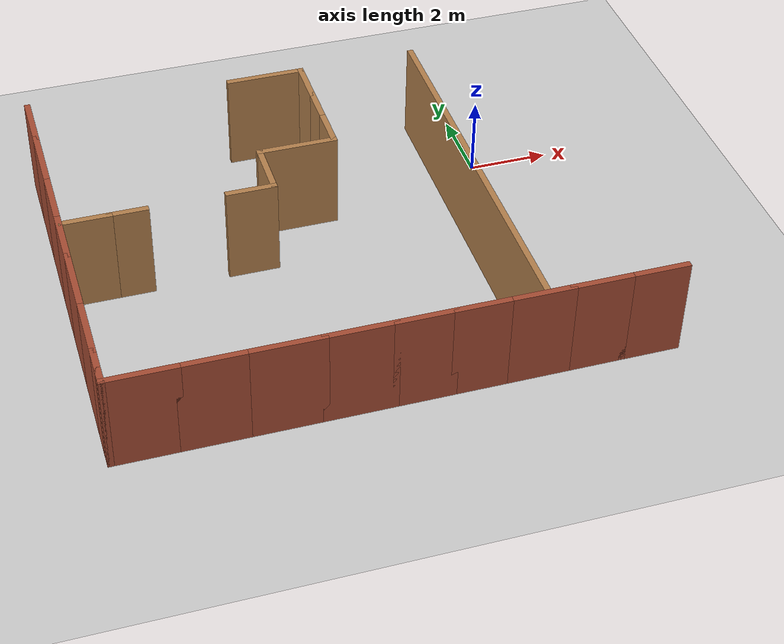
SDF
<sdf version="1.7">
 <world name="default">
  <model name="ground_plane">
   <static>1</static>
   <link name="link">
    <collision name="collision">
     <geometry><plane><normal>0 0 1</normal><size>100 100</size></plane></geometry>
     <surface>
      <contact><collide_bitmask>65535</collide_bitmask></contact>
      <friction><ode><mu>100</mu><mu2>50</mu2></ode></friction>
     </surface>
    </collision>
    <visual name="visual">
     <cast_shadows>0</cast_shadows>
     <geometry><plane><normal>0 0 1</normal><size>100 100</size></plane></geometry>
     <material>
      <script><uri>file://media/materials/scripts/gazebo.material</uri><name>Gazebo/Grey</name></script>
     </material>
    </visual>
   </link>
  </model>
  <model name="Building">
   <link name="Wall_107">
    <pose>-5.24865 1.58296 0 0 -0 0</pose>
    <visual name="Wall_107_Visual">
     <pose>0 0 1.25 0 -0 0</pose>
     <geometry><box><size>2 0.15 2.5</size></box></geometry>
     <material>
      <script><uri>file://media/materials/scripts/gazebo.material</uri><name>Gazebo/Wood</name></script>
      <ambient>1 1 1 1</ambient>
      <shader type="pixel"/>
     </material>
     <meta><layer>0</layer></meta>
    </visual>
    <collision name="Wall_107_Collision">
     <pose>0 0 1.25 0 -0 0</pose>
     <geometry><box><size>2 0.15 2.5</size></box></geometry>
     <surface>
      <friction>
       <ode><mu>1</mu><mu2>1</mu2><fdir1>0 0 0</fdir1><slip1>0</slip1><slip2>0</slip2></ode>
       <torsional>
        <coefficient>1</coefficient>
        <patch_radius>0</patch_radius>
        <surface_radius>0</surface_radius>
        <use_patch_radius>1</use_patch_radius>
        <ode><slip>0</slip></ode>
       </torsional>
      </friction>
      <bounce><restitution_coefficient>0</restitution_coefficient><threshold>1e+06</threshold></bounce>
      <contact>
       <collide_without_contact>0</collide_without_contact>
       <collide_without_contact_bitmask>1</collide_without_contact_bitmask>
       <collide_bitmask>1</collide_bitmask>
       <ode>
        <soft_cfm>0</soft_cfm>
        <soft_erp>0.2</soft_erp>
        <kp>1e+13</kp>
        <kd>1</kd>
        <max_vel>0.01</max_vel>
        <min_depth>0</min_depth>
       </ode>
       <bullet>
        <split_impulse>1</split_impulse>
        <split_impulse_penetration_threshold>-0.01</split_impulse_penetration_threshold>
        <soft_cfm>0</soft_cfm>
        <soft_erp>0.2</soft_erp>
        <kp>1e+13</kp>
        <kd>1</kd>
       </bullet>
      </contact>
     </surface>
    </collision>
   </link>
   <link name="Wall_115">
    <pose>-4.32365 1.03296 0 0 0 -1.5708</pose>
    <visual name="Wall_115_Visual">
     <pose>0 0 1.25 0 -0 0</pose>
     <geometry><box><size>1.25 0.15 2.5</size></box></geometry>
     <material>
      <script><uri>file://media/materials/scripts/gazebo.material</uri><name>Gazebo/Wood</name></script>
      <ambient>1 1 1 1</ambient>
      <shader type="pixel"/>
     </material>
     <meta><layer>0</layer></meta>
    </visual>
    <collision name="Wall_115_Collision">
     <pose>0 0 1.25 0 -0 0</pose>
     <geometry><box><size>1.25 0.15 2.5</size></box></geometry>
     <surface>
      <friction>
       <ode><mu>1</mu><mu2>1</mu2><fdir1>0 0 0</fdir1><slip1>0</slip1><slip2>0</slip2></ode>
       <torsional>
        <coefficient>1</coefficient>
        <patch_radius>0</patch_radius>
        <surface_radius>0</surface_radius>
        <use_patch_radius>1</use_patch_radius>
        <ode><slip>0</slip></ode>
       </torsional>
      </friction>
      <bounce><restitution_coefficient>0</restitution_coefficient><threshold>1e+06</threshold></bounce>
      <contact>
       <collide_without_contact>0</collide_without_contact>
       <collide_without_contact_bitmask>1</collide_without_contact_bitmask>
       <collide_bitmask>1</collide_bitmask>
       <ode>
        <soft_cfm>0</soft_cfm>
        <soft_erp>0.2</soft_erp>
        <kp>1e+13</kp>
        <kd>1</kd>
        <max_vel>0.01</max_vel>
        <min_depth>0</min_depth>
       </ode>
       <bullet>
        <split_impulse>1</split_impulse>
        <split_impulse_penetration_threshold>-0.01</split_impulse_penetration_threshold>
        <soft_cfm>0</soft_cfm>
        <soft_erp>0.2</soft_erp>
        <kp>1e+13</kp>
        <kd>1</kd>
       </bullet>
      </contact>
     </surface>
    </collision>
   </link>
   <link name="Wall_116">
    <pose>-4.32365 0.057961 0 0 0 -1.5708</pose>
    <visual name="Wall_116_Visual">
     <pose>0 0 1.25 0 -0 0</pose>
     <geometry><box><size>1 0.15 2.5</size></box></geometry>
     <material>
      <script><uri>file://media/materials/scripts/gazebo.material</uri><name>Gazebo/Wood</name></script>
      <ambient>1 1 1 1</ambient>
      <shader type="pixel"/>
     </material>
     <meta><layer>0</layer></meta>
    </visual>
    <collision name="Wall_116_Collision">
     <pose>0 0 1.25 0 -0 0</pose>
     <geometry><box><size>1 0.15 2.5</size></box></geometry>
     <surface>
      <friction>
       <ode><mu>1</mu><mu2>1</mu2><fdir1>0 0 0</fdir1><slip1>0</slip1><slip2>0</slip2></ode>
       <torsional>
        <coefficient>1</coefficient>
        <patch_radius>0</patch_radius>
        <surface_radius>0</surface_radius>
        <use_patch_radius>1</use_patch_radius>
        <ode><slip>0</slip></ode>
       </torsional>
      </friction>
      <bounce><restitution_coefficient>0</restitution_coefficient><threshold>1e+06</threshold></bounce>
      <contact>
       <collide_without_contact>0</collide_without_contact>
       <collide_without_contact_bitmask>1</collide_without_contact_bitmask>
       <collide_bitmask>1</collide_bitmask>
       <ode>
        <soft_cfm>0</soft_cfm>
        <soft_erp>0.2</soft_erp>
        <kp>1e+13</kp>
        <kd>1</kd>
        <max_vel>0.01</max_vel>
        <min_depth>0</min_depth>
       </ode>
       <bullet>
        <split_impulse>1</split_impulse>
        <split_impulse_penetration_threshold>-0.01</split_impulse_penetration_threshold>
        <soft_cfm>0</soft_cfm>
        <soft_erp>0.2</soft_erp>
        <kp>1e+13</kp>
        <kd>1</kd>
       </bullet>
      </contact>
     </surface>
    </collision>
   </link>
   <link name="Wall_117">
    <pose>-4.32365 -0.917039 0 0 0 -1.5708</pose>
    <visual name="Wall_117_Visual">
     <pose>0 0 1.25 0 -0 0</pose>
     <geometry><box><size>1.25 0.15 2.5</size></box></geometry>
     <material>
      <script><uri>file://media/materials/scripts/gazebo.material</uri><name>Gazebo/Wood</name></script>
      <ambient>1 1 1 1</ambient>
      <shader type="pixel"/>
     </material>
     <meta><layer>0</layer></meta>
    </visual>
    <collision name="Wall_117_Collision">
     <pose>0 0 1.25 0 -0 0</pose>
     <geometry><box><size>1.25 0.15 2.5</size></box></geometry>
     <surface>
      <friction>
       <ode><mu>1</mu><mu2>1</mu2><fdir1>0 0 0</fdir1><slip1>0</slip1><slip2>0</slip2></ode>
       <torsional>
        <coefficient>1</coefficient>
        <patch_radius>0</patch_radius>
        <surface_radius>0</surface_radius>
        <use_patch_radius>1</use_patch_radius>
        <ode><slip>0</slip></ode>
       </torsional>
      </friction>
      <bounce><restitution_coefficient>0</restitution_coefficient><threshold>1e+06</threshold></bounce>
      <contact>
       <collide_without_contact>0</collide_without_contact>
       <collide_without_contact_bitmask>1</collide_without_contact_bitmask>
       <collide_bitmask>1</collide_bitmask>
       <ode>
        <soft_cfm>0</soft_cfm>
        <soft_erp>0.2</soft_erp>
        <kp>1e+13</kp>
        <kd>1</kd>
        <max_vel>0.01</max_vel>
        <min_depth>0</min_depth>
       </ode>
       <bullet>
        <split_impulse>1</split_impulse>
        <split_impulse_penetration_threshold>-0.01</split_impulse_penetration_threshold>
        <soft_cfm>0</soft_cfm>
        <soft_erp>0.2</soft_erp>
        <kp>1e+13</kp>
        <kd>1</kd>
       </bullet>
      </contact>
     </surface>
    </collision>
   </link>
   <link name="Wall_118">
    <pose>-5.24865 -1.46704 0 0 -0 3.14159</pose>
    <visual name="Wall_118_Visual">
     <pose>0 0 1.25 0 -0 0</pose>
     <geometry><box><size>2 0.15 2.5</size></box></geometry>
     <material>
      <script><uri>file://media/materials/scripts/gazebo.material</uri><name>Gazebo/Wood</name></script>
      <ambient>1 1 1 1</ambient>
      <shader type="pixel"/>
     </material>
     <meta><layer>0</layer></meta>
    </visual>
    <collision name="Wall_118_Collision">
     <pose>0 0 1.25 0 -0 0</pose>
     <geometry><box><size>2 0.15 2.5</size></box></geometry>
     <surface>
      <friction>
       <ode><mu>1</mu><mu2>1</mu2><fdir1>0 0 0</fdir1><slip1>0</slip1><slip2>0</slip2></ode>
       <torsional>
        <coefficient>1</coefficient>
        <patch_radius>0</patch_radius>
        <surface_radius>0</surface_radius>
        <use_patch_radius>1</use_patch_radius>
        <ode><slip>0</slip></ode>
       </torsional>
      </friction>
      <bounce><restitution_coefficient>0</restitution_coefficient><threshold>1e+06</threshold></bounce>
      <contact>
       <collide_without_contact>0</collide_without_contact>
       <collide_without_contact_bitmask>1</collide_without_contact_bitmask>
       <collide_bitmask>1</collide_bitmask>
       <ode>
        <soft_cfm>0</soft_cfm>
        <soft_erp>0.2</soft_erp>
        <kp>1e+13</kp>
        <kd>1</kd>
        <max_vel>0.01</max_vel>
        <min_depth>0</min_depth>
       </ode>
       <bullet>
        <split_impulse>1</split_impulse>
        <split_impulse_penetration_threshold>-0.01</split_impulse_penetration_threshold>
        <soft_cfm>0</soft_cfm>
        <soft_erp>0.2</soft_erp>
        <kp>1e+13</kp>
        <kd>1</kd>
       </bullet>
      </contact>
     </surface>
    </collision>
   </link>
   <link name="Wall_119">
    <pose>-6.17365 -2.14204 0 0 0 -1.5708</pose>
    <visual name="Wall_119_Visual">
     <pose>0 0 1.25 0 -0 0</pose>
     <geometry><box><size>1.5 0.15 2.5</size></box></geometry>
     <material>
      <script><uri>file://media/materials/scripts/gazebo.material</uri><name>Gazebo/Wood</name></script>
      <ambient>1 1 1 1</ambient>
      <shader type="pixel"/>
     </material>
     <meta><layer>0</layer></meta>
    </visual>
    <collision name="Wall_119_Collision">
     <pose>0 0 1.25 0 -0 0</pose>
     <geometry><box><size>1.5 0.15 2.5</size></box></geometry>
     <surface>
      <friction>
       <ode><mu>1</mu><mu2>1</mu2><fdir1>0 0 0</fdir1><slip1>0</slip1><slip2>0</slip2></ode>
       <torsional>
        <coefficient>1</coefficient>
        <patch_radius>0</patch_radius>
        <surface_radius>0</surface_radius>
        <use_patch_radius>1</use_patch_radius>
        <ode><slip>0</slip></ode>
       </torsional>
      </friction>
      <bounce><restitution_coefficient>0</restitution_coefficient><threshold>1e+06</threshold></bounce>
      <contact>
       <collide_without_contact>0</collide_without_contact>
       <collide_without_contact_bitmask>1</collide_without_contact_bitmask>
       <collide_bitmask>1</collide_bitmask>
       <ode>
        <soft_cfm>0</soft_cfm>
        <soft_erp>0.2</soft_erp>
        <kp>1e+13</kp>
        <kd>1</kd>
        <max_vel>0.01</max_vel>
        <min_depth>0</min_depth>
       </ode>
       <bullet>
        <split_impulse>1</split_impulse>
        <split_impulse_penetration_threshold>-0.01</split_impulse_penetration_threshold>
        <soft_cfm>0</soft_cfm>
        <soft_erp>0.2</soft_erp>
        <kp>1e+13</kp>
        <kd>1</kd>
       </bullet>
      </contact>
     </surface>
    </collision>
   </link>
   <link name="Wall_120">
    <pose>-6.72365 -2.81704 0 0 -0 3.14159</pose>
    <visual name="Wall_120_Visual">
     <pose>0 0 1.25 0 -0 0</pose>
     <geometry><box><size>1.25 0.15 2.5</size></box></geometry>
     <material>
      <script><uri>file://media/materials/scripts/gazebo.material</uri><name>Gazebo/Wood</name></script>
      <ambient>1 1 1 1</ambient>
      <shader type="pixel"/>
     </material>
     <meta><layer>0</layer></meta>
    </visual>
    <collision name="Wall_120_Collision">
     <pose>0 0 1.25 0 -0 0</pose>
     <geometry><box><size>1.25 0.15 2.5</size></box></geometry>
     <surface>
      <friction>
       <ode><mu>1</mu><mu2>1</mu2><fdir1>0 0 0</fdir1><slip1>0</slip1><slip2>0</slip2></ode>
       <torsional>
        <coefficient>1</coefficient>
        <patch_radius>0</patch_radius>
        <surface_radius>0</surface_radius>
        <use_patch_radius>1</use_patch_radius>
        <ode><slip>0</slip></ode>
       </torsional>
      </friction>
      <bounce><restitution_coefficient>0</restitution_coefficient><threshold>1e+06</threshold></bounce>
      <contact>
       <collide_without_contact>0</collide_without_contact>
       <collide_without_contact_bitmask>1</collide_without_contact_bitmask>
       <collide_bitmask>1</collide_bitmask>
       <ode>
        <soft_cfm>0</soft_cfm>
        <soft_erp>0.2</soft_erp>
        <kp>1e+13</kp>
        <kd>1</kd>
        <max_vel>0.01</max_vel>
        <min_depth>0</min_depth>
       </ode>
       <bullet>
        <split_impulse>1</split_impulse>
        <split_impulse_penetration_threshold>-0.01</split_impulse_penetration_threshold>
        <soft_cfm>0</soft_cfm>
        <soft_erp>0.2</soft_erp>
        <kp>1e+13</kp>
        <kd>1</kd>
       </bullet>
      </contact>
     </surface>
    </collision>
   </link>
   <link name="Wall_123">
    <pose>-9.64865 -2.81704 0 0 -0 3.14159</pose>
    <visual name="Wall_123_Visual">
     <pose>0 0 1.25 0 -0 0</pose>
     <geometry><box><size>1 0.15 2.5</size></box></geometry>
     <material>
      <script><uri>file://media/materials/scripts/gazebo.material</uri><name>Gazebo/Wood</name></script>
      <ambient>1 1 1 1</ambient>
      <shader type="pixel"/>
     </material>
     <meta><layer>0</layer></meta>
    </visual>
    <collision name="Wall_123_Collision">
     <pose>0 0 1.25 0 -0 0</pose>
     <geometry><box><size>1 0.15 2.5</size></box></geometry>
     <surface>
      <friction>
       <ode><mu>1</mu><mu2>1</mu2><fdir1>0 0 0</fdir1><slip1>0</slip1><slip2>0</slip2></ode>
       <torsional>
        <coefficient>1</coefficient>
        <patch_radius>0</patch_radius>
        <surface_radius>0</surface_radius>
        <use_patch_radius>1</use_patch_radius>
        <ode><slip>0</slip></ode>
       </torsional>
      </friction>
      <bounce><restitution_coefficient>0</restitution_coefficient><threshold>1e+06</threshold></bounce>
      <contact>
       <collide_without_contact>0</collide_without_contact>
       <collide_without_contact_bitmask>1</collide_without_contact_bitmask>
       <collide_bitmask>1</collide_bitmask>
       <ode>
        <soft_cfm>0</soft_cfm>
        <soft_erp>0.2</soft_erp>
        <kp>1e+13</kp>
        <kd>1</kd>
        <max_vel>0.01</max_vel>
        <min_depth>0</min_depth>
       </ode>
       <bullet>
        <split_impulse>1</split_impulse>
        <split_impulse_penetration_threshold>-0.01</split_impulse_penetration_threshold>
        <soft_cfm>0</soft_cfm>
        <soft_erp>0.2</soft_erp>
        <kp>1e+13</kp>
        <kd>1</kd>
       </bullet>
      </contact>
     </surface>
    </collision>
   </link>
   <link name="Wall_124">
    <pose>-10.6237 -2.81704 0 0 -0 3.14159</pose>
    <visual name="Wall_124_Visual">
     <pose>0 0 1.25 0 -0 0</pose>
     <geometry><box><size>1.25 0.15 2.5</size></box></geometry>
     <material>
      <script><uri>file://media/materials/scripts/gazebo.material</uri><name>Gazebo/Wood</name></script>
      <ambient>1 1 1 1</ambient>
      <shader type="pixel"/>
     </material>
     <meta><layer>0</layer></meta>
    </visual>
    <collision name="Wall_124_Collision">
     <pose>0 0 1.25 0 -0 0</pose>
     <geometry><box><size>1.25 0.15 2.5</size></box></geometry>
     <surface>
      <friction>
       <ode><mu>1</mu><mu2>1</mu2><fdir1>0 0 0</fdir1><slip1>0</slip1><slip2>0</slip2></ode>
       <torsional>
        <coefficient>1</coefficient>
        <patch_radius>0</patch_radius>
        <surface_radius>0</surface_radius>
        <use_patch_radius>1</use_patch_radius>
        <ode><slip>0</slip></ode>
       </torsional>
      </friction>
      <bounce><restitution_coefficient>0</restitution_coefficient><threshold>1e+06</threshold></bounce>
      <contact>
       <collide_without_contact>0</collide_without_contact>
       <collide_without_contact_bitmask>1</collide_without_contact_bitmask>
       <collide_bitmask>1</collide_bitmask>
       <ode>
        <soft_cfm>0</soft_cfm>
        <soft_erp>0.2</soft_erp>
        <kp>1e+13</kp>
        <kd>1</kd>
        <max_vel>0.01</max_vel>
        <min_depth>0</min_depth>
       </ode>
       <bullet>
        <split_impulse>1</split_impulse>
        <split_impulse_penetration_threshold>-0.01</split_impulse_penetration_threshold>
        <soft_cfm>0</soft_cfm>
        <soft_erp>0.2</soft_erp>
        <kp>1e+13</kp>
        <kd>1</kd>
       </bullet>
      </contact>
     </surface>
    </collision>
   </link>
   <link name="Wall_146">
    <pose>-1.37365 -3.21704 0 0 0 -1.5708</pose>
    <visual name="Wall_146_Visual">
     <pose>0 0 1.25 0 -0 0</pose>
     <geometry><box><size>9.75 0.15 2.5</size></box></geometry>
     <material>
      <script><uri>file://media/materials/scripts/gazebo.material</uri><name>Gazebo/Wood</name></script>
      <ambient>1 1 1 1</ambient>
      <shader type="pixel"/>
     </material>
     <meta><layer>0</layer></meta>
    </visual>
    <collision name="Wall_146_Collision">
     <pose>0 0 1.25 0 -0 0</pose>
     <geometry><box><size>9.75 0.15 2.5</size></box></geometry>
     <surface>
      <friction>
       <ode><mu>1</mu><mu2>1</mu2><fdir1>0 0 0</fdir1><slip1>0</slip1><slip2>0</slip2></ode>
       <torsional>
        <coefficient>1</coefficient>
        <patch_radius>0</patch_radius>
        <surface_radius>0</surface_radius>
        <use_patch_radius>1</use_patch_radius>
        <ode><slip>0</slip></ode>
       </torsional>
      </friction>
      <bounce><restitution_coefficient>0</restitution_coefficient><threshold>1e+06</threshold></bounce>
      <contact>
       <collide_without_contact>0</collide_without_contact>
       <collide_without_contact_bitmask>1</collide_without_contact_bitmask>
       <collide_bitmask>1</collide_bitmask>
       <ode>
        <soft_cfm>0</soft_cfm>
        <soft_erp>0.2</soft_erp>
        <kp>1e+13</kp>
        <kd>1</kd>
        <max_vel>0.01</max_vel>
        <min_depth>0</min_depth>
       </ode>
       <bullet>
        <split_impulse>1</split_impulse>
        <split_impulse_penetration_threshold>-0.01</split_impulse_penetration_threshold>
        <soft_cfm>0</soft_cfm>
        <soft_erp>0.2</soft_erp>
        <kp>1e+13</kp>
        <kd>1</kd>
       </bullet>
      </contact>
     </surface>
    </collision>
   </link>
   <link name="Wall_16">
    <pose>-11.236 1.26127 0 0 0 -1.5708</pose>
    <visual name="Wall_16_Visual">
     <pose>0 0 1.25 0 -0 0</pose>
     <geometry><box><size>1.5 0.15 2.5</size></box></geometry>
     <material>
      <script><uri>file://media/materials/scripts/gazebo.material</uri><name>Gazebo/Bricks</name></script>
      <ambient>1 1 1 1</ambient>
      <shader type="pixel"/>
     </material>
     <meta><layer>0</layer></meta>
    </visual>
    <collision name="Wall_16_Collision">
     <pose>0 0 1.25 0 -0 0</pose>
     <geometry><box><size>1.5 0.15 2.5</size></box></geometry>
     <surface>
      <friction>
       <ode><mu>1</mu><mu2>1</mu2><fdir1>0 0 0</fdir1><slip1>0</slip1><slip2>0</slip2></ode>
       <torsional>
        <coefficient>1</coefficient>
        <patch_radius>0</patch_radius>
        <surface_radius>0</surface_radius>
        <use_patch_radius>1</use_patch_radius>
        <ode><slip>0</slip></ode>
       </torsional>
      </friction>
      <bounce><restitution_coefficient>0</restitution_coefficient><threshold>1e+06</threshold></bounce>
      <contact>
       <collide_without_contact>0</collide_without_contact>
       <collide_without_contact_bitmask>1</collide_without_contact_bitmask>
       <collide_bitmask>1</collide_bitmask>
       <ode>
        <soft_cfm>0</soft_cfm>
        <soft_erp>0.2</soft_erp>
        <kp>1e+13</kp>
        <kd>1</kd>
        <max_vel>0.01</max_vel>
        <min_depth>0</min_depth>
       </ode>
       <bullet>
        <split_impulse>1</split_impulse>
        <split_impulse_penetration_threshold>-0.01</split_impulse_penetration_threshold>
        <soft_cfm>0</soft_cfm>
        <soft_erp>0.2</soft_erp>
        <kp>1e+13</kp>
        <kd>1</kd>
       </bullet>
      </contact>
     </surface>
    </collision>
   </link>
   <link name="Wall_17">
    <pose>-11.236 -0.213726 0 0 0 -1.5708</pose>
    <visual name="Wall_17_Visual">
     <pose>0 0 1.25 0 -0 0</pose>
     <geometry><box><size>1.75 0.15 2.5</size></box></geometry>
     <material>
      <script><uri>file://media/materials/scripts/gazebo.material</uri><name>Gazebo/Bricks</name></script>
      <ambient>1 1 1 1</ambient>
      <shader type="pixel"/>
     </material>
     <meta><layer>0</layer></meta>
    </visual>
    <collision name="Wall_17_Collision">
     <pose>0 0 1.25 0 -0 0</pose>
     <geometry><box><size>1.75 0.15 2.5</size></box></geometry>
     <surface>
      <friction>
       <ode><mu>1</mu><mu2>1</mu2><fdir1>0 0 0</fdir1><slip1>0</slip1><slip2>0</slip2></ode>
       <torsional>
        <coefficient>1</coefficient>
        <patch_radius>0</patch_radius>
        <surface_radius>0</surface_radius>
        <use_patch_radius>1</use_patch_radius>
        <ode><slip>0</slip></ode>
       </torsional>
      </friction>
      <bounce><restitution_coefficient>0</restitution_coefficient><threshold>1e+06</threshold></bounce>
      <contact>
       <collide_without_contact>0</collide_without_contact>
       <collide_without_contact_bitmask>1</collide_without_contact_bitmask>
       <collide_bitmask>1</collide_bitmask>
       <ode>
        <soft_cfm>0</soft_cfm>
        <soft_erp>0.2</soft_erp>
        <kp>1e+13</kp>
        <kd>1</kd>
        <max_vel>0.01</max_vel>
        <min_depth>0</min_depth>
       </ode>
       <bullet>
        <split_impulse>1</split_impulse>
        <split_impulse_penetration_threshold>-0.01</split_impulse_penetration_threshold>
        <soft_cfm>0</soft_cfm>
        <soft_erp>0.2</soft_erp>
        <kp>1e+13</kp>
        <kd>1</kd>
       </bullet>
      </contact>
     </surface>
    </collision>
   </link>
   <link name="Wall_18">
    <pose>-11.236 -1.81373 0 0 0 -1.5708</pose>
    <visual name="Wall_18_Visual">
     <pose>0 0 1.25 0 -0 0</pose>
     <geometry><box><size>1.75 0.15 2.5</size></box></geometry>
     <material>
      <script><uri>file://media/materials/scripts/gazebo.material</uri><name>Gazebo/Bricks</name></script>
      <ambient>1 1 1 1</ambient>
      <shader type="pixel"/>
     </material>
     <meta><layer>0</layer></meta>
    </visual>
    <collision name="Wall_18_Collision">
     <pose>0 0 1.25 0 -0 0</pose>
     <geometry><box><size>1.75 0.15 2.5</size></box></geometry>
     <surface>
      <friction>
       <ode><mu>1</mu><mu2>1</mu2><fdir1>0 0 0</fdir1><slip1>0</slip1><slip2>0</slip2></ode>
       <torsional>
        <coefficient>1</coefficient>
        <patch_radius>0</patch_radius>
        <surface_radius>0</surface_radius>
        <use_patch_radius>1</use_patch_radius>
        <ode><slip>0</slip></ode>
       </torsional>
      </friction>
      <bounce><restitution_coefficient>0</restitution_coefficient><threshold>1e+06</threshold></bounce>
      <contact>
       <collide_without_contact>0</collide_without_contact>
       <collide_without_contact_bitmask>1</collide_without_contact_bitmask>
       <collide_bitmask>1</collide_bitmask>
       <ode>
        <soft_cfm>0</soft_cfm>
        <soft_erp>0.2</soft_erp>
        <kp>1e+13</kp>
        <kd>1</kd>
        <max_vel>0.01</max_vel>
        <min_depth>0</min_depth>
       </ode>
       <bullet>
        <split_impulse>1</split_impulse>
        <split_impulse_penetration_threshold>-0.01</split_impulse_penetration_threshold>
        <soft_cfm>0</soft_cfm>
        <soft_erp>0.2</soft_erp>
        <kp>1e+13</kp>
        <kd>1</kd>
       </bullet>
      </contact>
     </surface>
    </collision>
   </link>
   <link name="Wall_19">
    <pose>-11.236 -3.28873 0 0 0 -1.5708</pose>
    <visual name="Wall_19_Visual">
     <pose>0 0 1.25 0 -0 0</pose>
     <geometry><box><size>1.5 0.15 2.5</size></box></geometry>
     <material>
      <script><uri>file://media/materials/scripts/gazebo.material</uri><name>Gazebo/Bricks</name></script>
      <ambient>1 1 1 1</ambient>
      <shader type="pixel"/>
     </material>
     <meta><layer>0</layer></meta>
    </visual>
    <collision name="Wall_19_Collision">
     <pose>0 0 1.25 0 -0 0</pose>
     <geometry><box><size>1.5 0.15 2.5</size></box></geometry>
     <surface>
      <friction>
       <ode><mu>1</mu><mu2>1</mu2><fdir1>0 0 0</fdir1><slip1>0</slip1><slip2>0</slip2></ode>
       <torsional>
        <coefficient>1</coefficient>
        <patch_radius>0</patch_radius>
        <surface_radius>0</surface_radius>
        <use_patch_radius>1</use_patch_radius>
        <ode><slip>0</slip></ode>
       </torsional>
      </friction>
      <bounce><restitution_coefficient>0</restitution_coefficient><threshold>1e+06</threshold></bounce>
      <contact>
       <collide_without_contact>0</collide_without_contact>
       <collide_without_contact_bitmask>1</collide_without_contact_bitmask>
       <collide_bitmask>1</collide_bitmask>
       <ode>
        <soft_cfm>0</soft_cfm>
        <soft_erp>0.2</soft_erp>
        <kp>1e+13</kp>
        <kd>1</kd>
        <max_vel>0.01</max_vel>
        <min_depth>0</min_depth>
       </ode>
       <bullet>
        <split_impulse>1</split_impulse>
        <split_impulse_penetration_threshold>-0.01</split_impulse_penetration_threshold>
        <soft_cfm>0</soft_cfm>
        <soft_erp>0.2</soft_erp>
        <kp>1e+13</kp>
        <kd>1</kd>
       </bullet>
      </contact>
     </surface>
    </collision>
   </link>
   <link name="Wall_20">
    <pose>-11.236 -4.76373 0 0 0 -1.5708</pose>
    <visual name="Wall_20_Visual">
     <pose>0 0 1.25 0 -0 0</pose>
     <geometry><box><size>1.75 0.15 2.5</size></box></geometry>
     <material>
      <script><uri>file://media/materials/scripts/gazebo.material</uri><name>Gazebo/Bricks</name></script>
      <ambient>1 1 1 1</ambient>
      <shader type="pixel"/>
     </material>
     <meta><layer>0</layer></meta>
    </visual>
    <collision name="Wall_20_Collision">
     <pose>0 0 1.25 0 -0 0</pose>
     <geometry><box><size>1.75 0.15 2.5</size></box></geometry>
     <surface>
      <friction>
       <ode><mu>1</mu><mu2>1</mu2><fdir1>0 0 0</fdir1><slip1>0</slip1><slip2>0</slip2></ode>
       <torsional>
        <coefficient>1</coefficient>
        <patch_radius>0</patch_radius>
        <surface_radius>0</surface_radius>
        <use_patch_radius>1</use_patch_radius>
        <ode><slip>0</slip></ode>
       </torsional>
      </friction>
      <bounce><restitution_coefficient>0</restitution_coefficient><threshold>1e+06</threshold></bounce>
      <contact>
       <collide_without_contact>0</collide_without_contact>
       <collide_without_contact_bitmask>1</collide_without_contact_bitmask>
       <collide_bitmask>1</collide_bitmask>
       <ode>
        <soft_cfm>0</soft_cfm>
        <soft_erp>0.2</soft_erp>
        <kp>1e+13</kp>
        <kd>1</kd>
        <max_vel>0.01</max_vel>
        <min_depth>0</min_depth>
       </ode>
       <bullet>
        <split_impulse>1</split_impulse>
        <split_impulse_penetration_threshold>-0.01</split_impulse_penetration_threshold>
        <soft_cfm>0</soft_cfm>
        <soft_erp>0.2</soft_erp>
        <kp>1e+13</kp>
        <kd>1</kd>
       </bullet>
      </contact>
     </surface>
    </collision>
   </link>
   <link name="Wall_21">
    <pose>-11.236 -6.36373 0 0 0 -1.5708</pose>
    <visual name="Wall_21_Visual">
     <pose>0 0 1.25 0 -0 0</pose>
     <geometry><box><size>1.75 0.15 2.5</size></box></geometry>
     <material>
      <script><uri>file://media/materials/scripts/gazebo.material</uri><name>Gazebo/Bricks</name></script>
      <ambient>1 1 1 1</ambient>
      <shader type="pixel"/>
     </material>
     <meta><layer>0</layer></meta>
    </visual>
    <collision name="Wall_21_Collision">
     <pose>0 0 1.25 0 -0 0</pose>
     <geometry><box><size>1.75 0.15 2.5</size></box></geometry>
     <surface>
      <friction>
       <ode><mu>1</mu><mu2>1</mu2><fdir1>0 0 0</fdir1><slip1>0</slip1><slip2>0</slip2></ode>
       <torsional>
        <coefficient>1</coefficient>
        <patch_radius>0</patch_radius>
        <surface_radius>0</surface_radius>
        <use_patch_radius>1</use_patch_radius>
        <ode><slip>0</slip></ode>
       </torsional>
      </friction>
      <bounce><restitution_coefficient>0</restitution_coefficient><threshold>1e+06</threshold></bounce>
      <contact>
       <collide_without_contact>0</collide_without_contact>
       <collide_without_contact_bitmask>1</collide_without_contact_bitmask>
       <collide_bitmask>1</collide_bitmask>
       <ode>
        <soft_cfm>0</soft_cfm>
        <soft_erp>0.2</soft_erp>
        <kp>1e+13</kp>
        <kd>1</kd>
        <max_vel>0.01</max_vel>
        <min_depth>0</min_depth>
       </ode>
       <bullet>
        <split_impulse>1</split_impulse>
        <split_impulse_penetration_threshold>-0.01</split_impulse_penetration_threshold>
        <soft_cfm>0</soft_cfm>
        <soft_erp>0.2</soft_erp>
        <kp>1e+13</kp>
        <kd>1</kd>
       </bullet>
      </contact>
     </surface>
    </collision>
   </link>
   <link name="Wall_22">
    <pose>-11.236 -7.46373 0 0 0 -1.5708</pose>
    <visual name="Wall_22_Visual">
     <pose>0 0 1.25 0 -0 0</pose>
     <geometry><box><size>0.75 0.15 2.5</size></box></geometry>
     <material>
      <script><uri>file://media/materials/scripts/gazebo.material</uri><name>Gazebo/Bricks</name></script>
      <ambient>1 1 1 1</ambient>
      <shader type="pixel"/>
     </material>
     <meta><layer>0</layer></meta>
    </visual>
    <collision name="Wall_22_Collision">
     <pose>0 0 1.25 0 -0 0</pose>
     <geometry><box><size>0.75 0.15 2.5</size></box></geometry>
     <surface>
      <friction>
       <ode><mu>1</mu><mu2>1</mu2><fdir1>0 0 0</fdir1><slip1>0</slip1><slip2>0</slip2></ode>
       <torsional>
        <coefficient>1</coefficient>
        <patch_radius>0</patch_radius>
        <surface_radius>0</surface_radius>
        <use_patch_radius>1</use_patch_radius>
        <ode><slip>0</slip></ode>
       </torsional>
      </friction>
      <bounce><restitution_coefficient>0</restitution_coefficient><threshold>1e+06</threshold></bounce>
      <contact>
       <collide_without_contact>0</collide_without_contact>
       <collide_without_contact_bitmask>1</collide_without_contact_bitmask>
       <collide_bitmask>1</collide_bitmask>
       <ode>
        <soft_cfm>0</soft_cfm>
        <soft_erp>0.2</soft_erp>
        <kp>1e+13</kp>
        <kd>1</kd>
        <max_vel>0.01</max_vel>
        <min_depth>0</min_depth>
       </ode>
       <bullet>
        <split_impulse>1</split_impulse>
        <split_impulse_penetration_threshold>-0.01</split_impulse_penetration_threshold>
        <soft_cfm>0</soft_cfm>
        <soft_erp>0.2</soft_erp>
        <kp>1e+13</kp>
        <kd>1</kd>
       </bullet>
      </contact>
     </surface>
    </collision>
   </link>
   <link name="Wall_23">
    <pose>-11.236 -7.93873 0 0 0 -1.5708</pose>
    <visual name="Wall_23_Visual">
     <pose>0 0 1.25 0 -0 0</pose>
     <geometry><box><size>0.5 0.15 2.5</size></box></geometry>
     <material>
      <script><uri>file://media/materials/scripts/gazebo.material</uri><name>Gazebo/Bricks</name></script>
      <ambient>1 1 1 1</ambient>
      <shader type="pixel"/>
     </material>
     <meta><layer>0</layer></meta>
    </visual>
    <collision name="Wall_23_Collision">
     <pose>0 0 1.25 0 -0 0</pose>
     <geometry><box><size>0.5 0.15 2.5</size></box></geometry>
     <surface>
      <friction>
       <ode><mu>1</mu><mu2>1</mu2><fdir1>0 0 0</fdir1><slip1>0</slip1><slip2>0</slip2></ode>
       <torsional>
        <coefficient>1</coefficient>
        <patch_radius>0</patch_radius>
        <surface_radius>0</surface_radius>
        <use_patch_radius>1</use_patch_radius>
        <ode><slip>0</slip></ode>
       </torsional>
      </friction>
      <bounce><restitution_coefficient>0</restitution_coefficient><threshold>1e+06</threshold></bounce>
      <contact>
       <collide_without_contact>0</collide_without_contact>
       <collide_without_contact_bitmask>1</collide_without_contact_bitmask>
       <collide_bitmask>1</collide_bitmask>
       <ode>
        <soft_cfm>0</soft_cfm>
        <soft_erp>0.2</soft_erp>
        <kp>1e+13</kp>
        <kd>1</kd>
        <max_vel>0.01</max_vel>
        <min_depth>0</min_depth>
       </ode>
       <bullet>
        <split_impulse>1</split_impulse>
        <split_impulse_penetration_threshold>-0.01</split_impulse_penetration_threshold>
        <soft_cfm>0</soft_cfm>
        <soft_erp>0.2</soft_erp>
        <kp>1e+13</kp>
        <kd>1</kd>
       </bullet>
      </contact>
     </surface>
    </collision>
   </link>
   <link name="Wall_24">
    <pose>-10.436 -8.11373 0 0 -0 0</pose>
    <visual name="Wall_24_Visual">
     <pose>0 0 1.25 0 -0 0</pose>
     <geometry><box><size>1.75 0.15 2.5</size></box></geometry>
     <material>
      <script><uri>file://media/materials/scripts/gazebo.material</uri><name>Gazebo/Bricks</name></script>
      <ambient>1 1 1 1</ambient>
      <shader type="pixel"/>
     </material>
     <meta><layer>0</layer></meta>
    </visual>
    <collision name="Wall_24_Collision">
     <pose>0 0 1.25 0 -0 0</pose>
     <geometry><box><size>1.75 0.15 2.5</size></box></geometry>
     <surface>
      <friction>
       <ode><mu>1</mu><mu2>1</mu2><fdir1>0 0 0</fdir1><slip1>0</slip1><slip2>0</slip2></ode>
       <torsional>
        <coefficient>1</coefficient>
        <patch_radius>0</patch_radius>
        <surface_radius>0</surface_radius>
        <use_patch_radius>1</use_patch_radius>
        <ode><slip>0</slip></ode>
       </torsional>
      </friction>
      <bounce><restitution_coefficient>0</restitution_coefficient><threshold>1e+06</threshold></bounce>
      <contact>
       <collide_without_contact>0</collide_without_contact>
       <collide_without_contact_bitmask>1</collide_without_contact_bitmask>
       <collide_bitmask>1</collide_bitmask>
       <ode>
        <soft_cfm>0</soft_cfm>
        <soft_erp>0.2</soft_erp>
        <kp>1e+13</kp>
        <kd>1</kd>
        <max_vel>0.01</max_vel>
        <min_depth>0</min_depth>
       </ode>
       <bullet>
        <split_impulse>1</split_impulse>
        <split_impulse_penetration_threshold>-0.01</split_impulse_penetration_threshold>
        <soft_cfm>0</soft_cfm>
        <soft_erp>0.2</soft_erp>
        <kp>1e+13</kp>
        <kd>1</kd>
       </bullet>
      </contact>
     </surface>
    </collision>
   </link>
   <link name="Wall_25">
    <pose>-8.83596 -8.11373 0 0 -0 0</pose>
    <visual name="Wall_25_Visual">
     <pose>0 0 1.25 0 -0 0</pose>
     <geometry><box><size>1.75 0.15 2.5</size></box></geometry>
     <material>
      <script><uri>file://media/materials/scripts/gazebo.material</uri><name>Gazebo/Bricks</name></script>
      <ambient>1 1 1 1</ambient>
      <shader type="pixel"/>
     </material>
     <meta><layer>0</layer></meta>
    </visual>
    <collision name="Wall_25_Collision">
     <pose>0 0 1.25 0 -0 0</pose>
     <geometry><box><size>1.75 0.15 2.5</size></box></geometry>
     <surface>
      <friction>
       <ode><mu>1</mu><mu2>1</mu2><fdir1>0 0 0</fdir1><slip1>0</slip1><slip2>0</slip2></ode>
       <torsional>
        <coefficient>1</coefficient>
        <patch_radius>0</patch_radius>
        <surface_radius>0</surface_radius>
        <use_patch_radius>1</use_patch_radius>
        <ode><slip>0</slip></ode>
       </torsional>
      </friction>
      <bounce><restitution_coefficient>0</restitution_coefficient><threshold>1e+06</threshold></bounce>
      <contact>
       <collide_without_contact>0</collide_without_contact>
       <collide_without_contact_bitmask>1</collide_without_contact_bitmask>
       <collide_bitmask>1</collide_bitmask>
       <ode>
        <soft_cfm>0</soft_cfm>
        <soft_erp>0.2</soft_erp>
        <kp>1e+13</kp>
        <kd>1</kd>
        <max_vel>0.01</max_vel>
        <min_depth>0</min_depth>
       </ode>
       <bullet>
        <split_impulse>1</split_impulse>
        <split_impulse_penetration_threshold>-0.01</split_impulse_penetration_threshold>
        <soft_cfm>0</soft_cfm>
        <soft_erp>0.2</soft_erp>
        <kp>1e+13</kp>
        <kd>1</kd>
       </bullet>
      </contact>
     </surface>
    </collision>
   </link>
   <link name="Wall_26">
    <pose>-7.23596 -8.11373 0 0 -0 0</pose>
    <visual name="Wall_26_Visual">
     <pose>0 0 1.25 0 -0 0</pose>
     <geometry><box><size>1.75 0.15 2.5</size></box></geometry>
     <material>
      <script><uri>file://media/materials/scripts/gazebo.material</uri><name>Gazebo/Bricks</name></script>
      <ambient>1 1 1 1</ambient>
      <shader type="pixel"/>
     </material>
     <meta><layer>0</layer></meta>
    </visual>
    <collision name="Wall_26_Collision">
     <pose>0 0 1.25 0 -0 0</pose>
     <geometry><box><size>1.75 0.15 2.5</size></box></geometry>
     <surface>
      <friction>
       <ode><mu>1</mu><mu2>1</mu2><fdir1>0 0 0</fdir1><slip1>0</slip1><slip2>0</slip2></ode>
       <torsional>
        <coefficient>1</coefficient>
        <patch_radius>0</patch_radius>
        <surface_radius>0</surface_radius>
        <use_patch_radius>1</use_patch_radius>
        <ode><slip>0</slip></ode>
       </torsional>
      </friction>
      <bounce><restitution_coefficient>0</restitution_coefficient><threshold>1e+06</threshold></bounce>
      <contact>
       <collide_without_contact>0</collide_without_contact>
       <collide_without_contact_bitmask>1</collide_without_contact_bitmask>
       <collide_bitmask>1</collide_bitmask>
       <ode>
        <soft_cfm>0</soft_cfm>
        <soft_erp>0.2</soft_erp>
        <kp>1e+13</kp>
        <kd>1</kd>
        <max_vel>0.01</max_vel>
        <min_depth>0</min_depth>
       </ode>
       <bullet>
        <split_impulse>1</split_impulse>
        <split_impulse_penetration_threshold>-0.01</split_impulse_penetration_threshold>
        <soft_cfm>0</soft_cfm>
        <soft_erp>0.2</soft_erp>
        <kp>1e+13</kp>
        <kd>1</kd>
       </bullet>
      </contact>
     </surface>
    </collision>
   </link>
   <link name="Wall_27">
    <pose>-5.63596 -8.11373 0 0 -0 0</pose>
    <visual name="Wall_27_Visual">
     <pose>0 0 1.25 0 -0 0</pose>
     <geometry><box><size>1.75 0.15 2.5</size></box></geometry>
     <material>
      <script><uri>file://media/materials/scripts/gazebo.material</uri><name>Gazebo/Bricks</name></script>
      <ambient>1 1 1 1</ambient>
      <shader type="pixel"/>
     </material>
     <meta><layer>0</layer></meta>
    </visual>
    <collision name="Wall_27_Collision">
     <pose>0 0 1.25 0 -0 0</pose>
     <geometry><box><size>1.75 0.15 2.5</size></box></geometry>
     <surface>
      <friction>
       <ode><mu>1</mu><mu2>1</mu2><fdir1>0 0 0</fdir1><slip1>0</slip1><slip2>0</slip2></ode>
       <torsional>
        <coefficient>1</coefficient>
        <patch_radius>0</patch_radius>
        <surface_radius>0</surface_radius>
        <use_patch_radius>1</use_patch_radius>
        <ode><slip>0</slip></ode>
       </torsional>
      </friction>
      <bounce><restitution_coefficient>0</restitution_coefficient><threshold>1e+06</threshold></bounce>
      <contact>
       <collide_without_contact>0</collide_without_contact>
       <collide_without_contact_bitmask>1</collide_without_contact_bitmask>
       <collide_bitmask>1</collide_bitmask>
       <ode>
        <soft_cfm>0</soft_cfm>
        <soft_erp>0.2</soft_erp>
        <kp>1e+13</kp>
        <kd>1</kd>
        <max_vel>0.01</max_vel>
        <min_depth>0</min_depth>
       </ode>
       <bullet>
        <split_impulse>1</split_impulse>
        <split_impulse_penetration_threshold>-0.01</split_impulse_penetration_threshold>
        <soft_cfm>0</soft_cfm>
        <soft_erp>0.2</soft_erp>
        <kp>1e+13</kp>
        <kd>1</kd>
       </bullet>
      </contact>
     </surface>
    </collision>
   </link>
   <link name="Wall_28">
    <pose>-4.16096 -8.11373 0 0 -0 0</pose>
    <visual name="Wall_28_Visual">
     <pose>0 0 1.25 0 -0 0</pose>
     <geometry><box><size>1.5 0.15 2.5</size></box></geometry>
     <material>
      <script><uri>file://media/materials/scripts/gazebo.material</uri><name>Gazebo/Bricks</name></script>
      <ambient>1 1 1 1</ambient>
      <shader type="pixel"/>
     </material>
     <meta><layer>0</layer></meta>
    </visual>
    <collision name="Wall_28_Collision">
     <pose>0 0 1.25 0 -0 0</pose>
     <geometry><box><size>1.5 0.15 2.5</size></box></geometry>
     <surface>
      <friction>
       <ode><mu>1</mu><mu2>1</mu2><fdir1>0 0 0</fdir1><slip1>0</slip1><slip2>0</slip2></ode>
       <torsional>
        <coefficient>1</coefficient>
        <patch_radius>0</patch_radius>
        <surface_radius>0</surface_radius>
        <use_patch_radius>1</use_patch_radius>
        <ode><slip>0</slip></ode>
       </torsional>
      </friction>
      <bounce><restitution_coefficient>0</restitution_coefficient><threshold>1e+06</threshold></bounce>
      <contact>
       <collide_without_contact>0</collide_without_contact>
       <collide_without_contact_bitmask>1</collide_without_contact_bitmask>
       <collide_bitmask>1</collide_bitmask>
       <ode>
        <soft_cfm>0</soft_cfm>
        <soft_erp>0.2</soft_erp>
        <kp>1e+13</kp>
        <kd>1</kd>
        <max_vel>0.01</max_vel>
        <min_depth>0</min_depth>
       </ode>
       <bullet>
        <split_impulse>1</split_impulse>
        <split_impulse_penetration_threshold>-0.01</split_impulse_penetration_threshold>
        <soft_cfm>0</soft_cfm>
        <soft_erp>0.2</soft_erp>
        <kp>1e+13</kp>
        <kd>1</kd>
       </bullet>
      </contact>
     </surface>
    </collision>
   </link>
   <link name="Wall_29">
    <pose>-2.81096 -8.11373 0 0 -0 0</pose>
    <visual name="Wall_29_Visual">
     <pose>0 0 1.25 0 -0 0</pose>
     <geometry><box><size>1.5 0.15 2.5</size></box></geometry>
     <material>
      <script><uri>file://media/materials/scripts/gazebo.material</uri><name>Gazebo/Bricks</name></script>
      <ambient>1 1 1 1</ambient>
      <shader type="pixel"/>
     </material>
     <meta><layer>0</layer></meta>
    </visual>
    <collision name="Wall_29_Collision">
     <pose>0 0 1.25 0 -0 0</pose>
     <geometry><box><size>1.5 0.15 2.5</size></box></geometry>
     <surface>
      <friction>
       <ode><mu>1</mu><mu2>1</mu2><fdir1>0 0 0</fdir1><slip1>0</slip1><slip2>0</slip2></ode>
       <torsional>
        <coefficient>1</coefficient>
        <patch_radius>0</patch_radius>
        <surface_radius>0</surface_radius>
        <use_patch_radius>1</use_patch_radius>
        <ode><slip>0</slip></ode>
       </torsional>
      </friction>
      <bounce><restitution_coefficient>0</restitution_coefficient><threshold>1e+06</threshold></bounce>
      <contact>
       <collide_without_contact>0</collide_without_contact>
       <collide_without_contact_bitmask>1</collide_without_contact_bitmask>
       <collide_bitmask>1</collide_bitmask>
       <ode>
        <soft_cfm>0</soft_cfm>
        <soft_erp>0.2</soft_erp>
        <kp>1e+13</kp>
        <kd>1</kd>
        <max_vel>0.01</max_vel>
        <min_depth>0</min_depth>
       </ode>
       <bullet>
        <split_impulse>1</split_impulse>
        <split_impulse_penetration_threshold>-0.01</split_impulse_penetration_threshold>
        <soft_cfm>0</soft_cfm>
        <soft_erp>0.2</soft_erp>
        <kp>1e+13</kp>
        <kd>1</kd>
       </bullet>
      </contact>
     </surface>
    </collision>
   </link>
   <link name="Wall_30">
    <pose>-1.46096 -8.11373 0 0 -0 0</pose>
    <visual name="Wall_30_Visual">
     <pose>0 0 1.25 0 -0 0</pose>
     <geometry><box><size>1.5 0.15 2.5</size></box></geometry>
     <material>
      <script><uri>file://media/materials/scripts/gazebo.material</uri><name>Gazebo/Bricks</name></script>
      <ambient>1 1 1 1</ambient>
      <shader type="pixel"/>
     </material>
     <meta><layer>0</layer></meta>
    </visual>
    <collision name="Wall_30_Collision">
     <pose>0 0 1.25 0 -0 0</pose>
     <geometry><box><size>1.5 0.15 2.5</size></box></geometry>
     <surface>
      <friction>
       <ode><mu>1</mu><mu2>1</mu2><fdir1>0 0 0</fdir1><slip1>0</slip1><slip2>0</slip2></ode>
       <torsional>
        <coefficient>1</coefficient>
        <patch_radius>0</patch_radius>
        <surface_radius>0</surface_radius>
        <use_patch_radius>1</use_patch_radius>
        <ode><slip>0</slip></ode>
       </torsional>
      </friction>
      <bounce><restitution_coefficient>0</restitution_coefficient><threshold>1e+06</threshold></bounce>
      <contact>
       <collide_without_contact>0</collide_without_contact>
       <collide_without_contact_bitmask>1</collide_without_contact_bitmask>
       <collide_bitmask>1</collide_bitmask>
       <ode>
        <soft_cfm>0</soft_cfm>
        <soft_erp>0.2</soft_erp>
        <kp>1e+13</kp>
        <kd>1</kd>
        <max_vel>0.01</max_vel>
        <min_depth>0</min_depth>
       </ode>
       <bullet>
        <split_impulse>1</split_impulse>
        <split_impulse_penetration_threshold>-0.01</split_impulse_penetration_threshold>
        <soft_cfm>0</soft_cfm>
        <soft_erp>0.2</soft_erp>
        <kp>1e+13</kp>
        <kd>1</kd>
       </bullet>
      </contact>
     </surface>
    </collision>
   </link>
   <link name="Wall_31">
    <pose>-0.110956 -8.11373 0 0 -0 0</pose>
    <visual name="Wall_31_Visual">
     <pose>0 0 1.25 0 -0 0</pose>
     <geometry><box><size>1.5 0.15 2.5</size></box></geometry>
     <material>
      <script><uri>file://media/materials/scripts/gazebo.material</uri><name>Gazebo/Bricks</name></script>
      <ambient>1 1 1 1</ambient>
      <shader type="pixel"/>
     </material>
     <meta><layer>0</layer></meta>
    </visual>
    <collision name="Wall_31_Collision">
     <pose>0 0 1.25 0 -0 0</pose>
     <geometry><box><size>1.5 0.15 2.5</size></box></geometry>
     <surface>
      <friction>
       <ode><mu>1</mu><mu2>1</mu2><fdir1>0 0 0</fdir1><slip1>0</slip1><slip2>0</slip2></ode>
       <torsional>
        <coefficient>1</coefficient>
        <patch_radius>0</patch_radius>
        <surface_radius>0</surface_radius>
        <use_patch_radius>1</use_patch_radius>
        <ode><slip>0</slip></ode>
       </torsional>
      </friction>
      <bounce><restitution_coefficient>0</restitution_coefficient><threshold>1e+06</threshold></bounce>
      <contact>
       <collide_without_contact>0</collide_without_contact>
       <collide_without_contact_bitmask>1</collide_without_contact_bitmask>
       <collide_bitmask>1</collide_bitmask>
       <ode>
        <soft_cfm>0</soft_cfm>
        <soft_erp>0.2</soft_erp>
        <kp>1e+13</kp>
        <kd>1</kd>
        <max_vel>0.01</max_vel>
        <min_depth>0</min_depth>
       </ode>
       <bullet>
        <split_impulse>1</split_impulse>
        <split_impulse_penetration_threshold>-0.01</split_impulse_penetration_threshold>
        <soft_cfm>0</soft_cfm>
        <soft_erp>0.2</soft_erp>
        <kp>1e+13</kp>
        <kd>1</kd>
       </bullet>
      </contact>
     </surface>
    </collision>
   </link>
   <link name="Wall_32">
    <pose>1.23904 -8.11373 0 0 -0 0</pose>
    <visual name="Wall_32_Visual">
     <pose>0 0 1.25 0 -0 0</pose>
     <geometry><box><size>1.5 0.15 2.5</size></box></geometry>
     <material>
      <script><uri>file://media/materials/scripts/gazebo.material</uri><name>Gazebo/Bricks</name></script>
      <ambient>1 1 1 1</ambient>
      <shader type="pixel"/>
     </material>
     <meta><layer>0</layer></meta>
    </visual>
    <collision name="Wall_32_Collision">
     <pose>0 0 1.25 0 -0 0</pose>
     <geometry><box><size>1.5 0.15 2.5</size></box></geometry>
     <surface>
      <friction>
       <ode><mu>1</mu><mu2>1</mu2><fdir1>0 0 0</fdir1><slip1>0</slip1><slip2>0</slip2></ode>
       <torsional>
        <coefficient>1</coefficient>
        <patch_radius>0</patch_radius>
        <surface_radius>0</surface_radius>
        <use_patch_radius>1</use_patch_radius>
        <ode><slip>0</slip></ode>
       </torsional>
      </friction>
      <bounce><restitution_coefficient>0</restitution_coefficient><threshold>1e+06</threshold></bounce>
      <contact>
       <collide_without_contact>0</collide_without_contact>
       <collide_without_contact_bitmask>1</collide_without_contact_bitmask>
       <collide_bitmask>1</collide_bitmask>
       <ode>
        <soft_cfm>0</soft_cfm>
        <soft_erp>0.2</soft_erp>
        <kp>1e+13</kp>
        <kd>1</kd>
        <max_vel>0.01</max_vel>
        <min_depth>0</min_depth>
       </ode>
       <bullet>
        <split_impulse>1</split_impulse>
        <split_impulse_penetration_threshold>-0.01</split_impulse_penetration_threshold>
        <soft_cfm>0</soft_cfm>
        <soft_erp>0.2</soft_erp>
        <kp>1e+13</kp>
        <kd>1</kd>
       </bullet>
      </contact>
     </surface>
    </collision>
   </link>
   <static>1</static>
   <pose>0.311755 0.465135 0 0 -0 0</pose>
  </model>
 </world>
</sdf>
